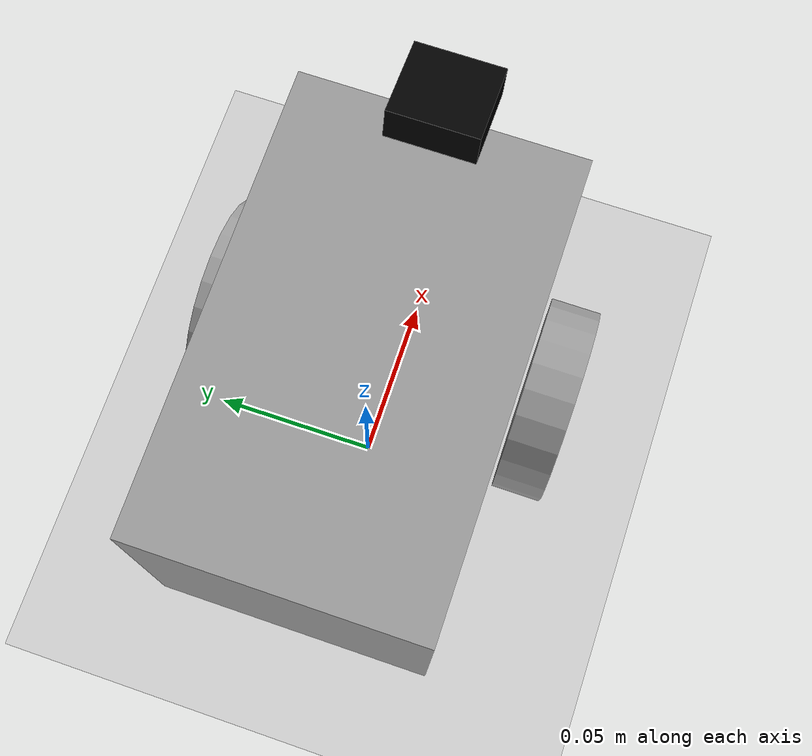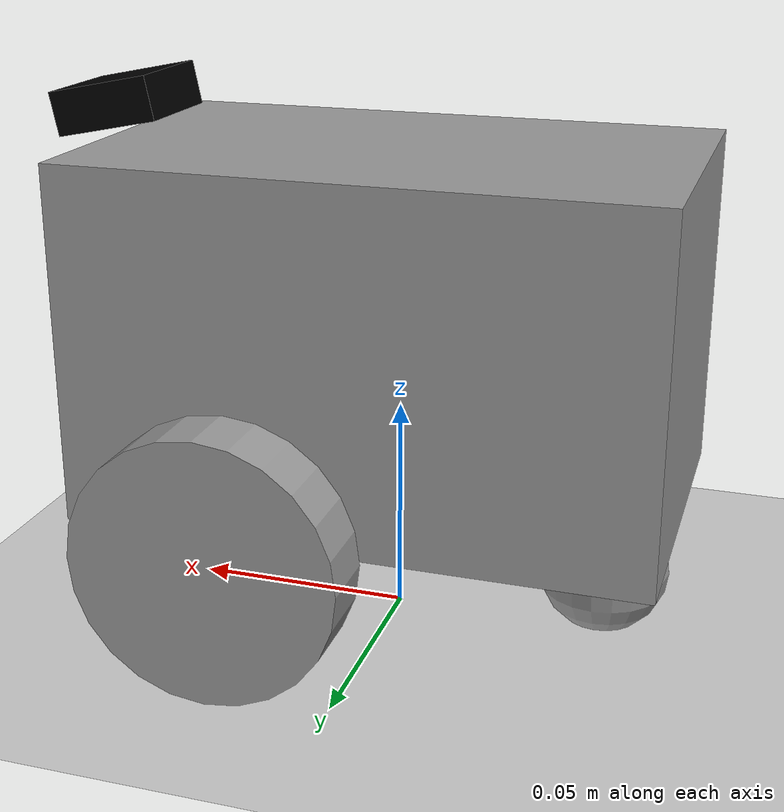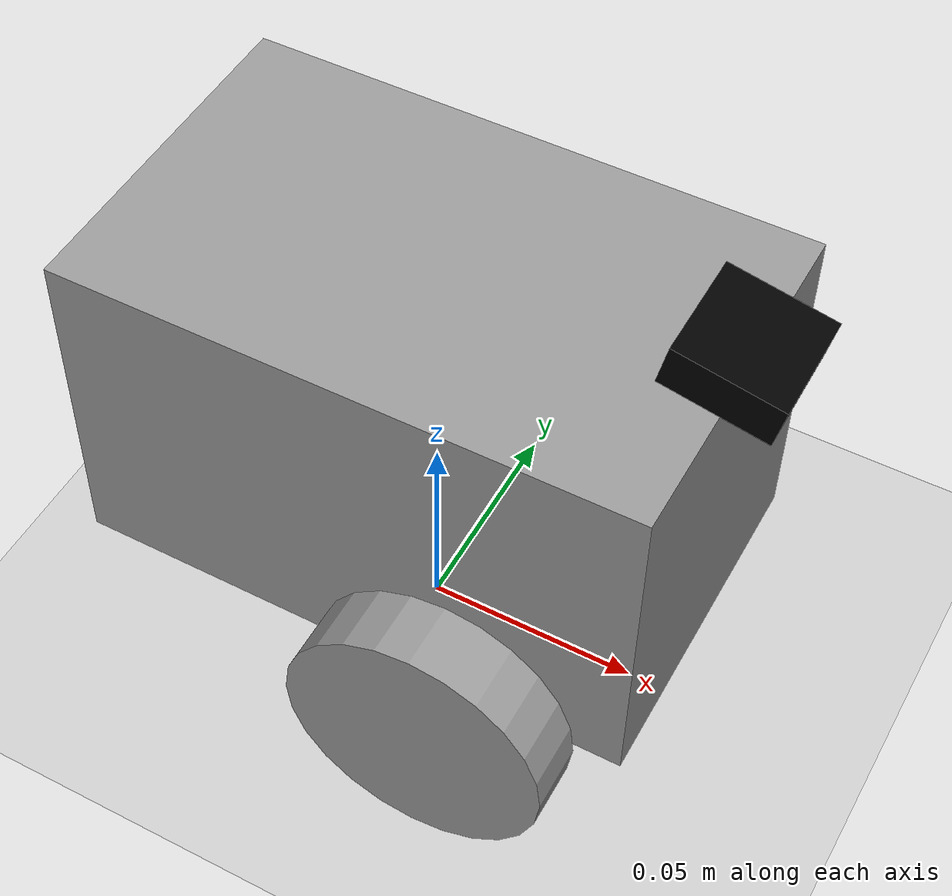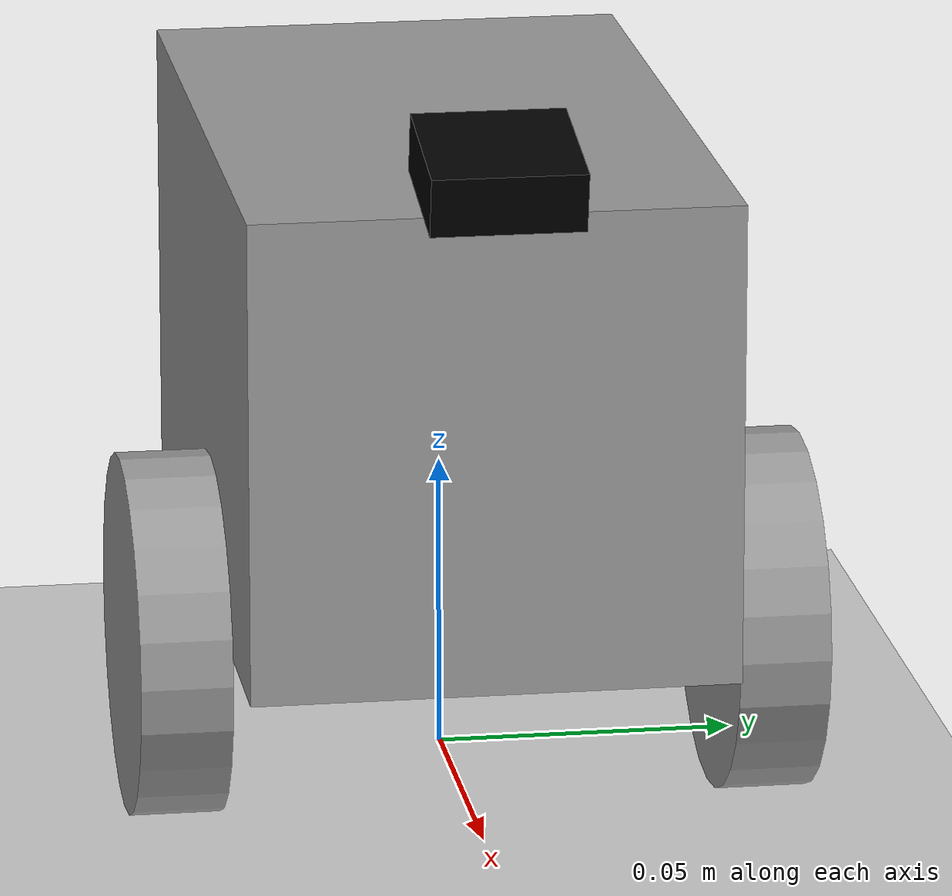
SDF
<?xml version="1.0" ?>
<sdf version="1.5">
  <world name="default">

   <!-- A global light source -->
    <include>
      <uri>model://sun</uri>
    </include>

   <!-- A ground plane -->
    <include>
      <uri>model://ground_plane</uri>
    </include>

    <model name="test">
    <!-- A testing model that includes the Velodyne sensor model -->
      <include>
        <uri>model://hummingbot</uri>
      </include>
    <!-- Attach the plugin to this model -->
      <plugin name="hummingbot_wheel" filename="libhummingbot_plugin.so"/>
   </model>
 </world>
</sdf>

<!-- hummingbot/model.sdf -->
<sdf version='1.6'>
  <model name='hummingbot'>
    <link name='main_box'>
      <pose>0.0 0.0 0.07 0 -0 0</pose>
      <inertial>
        <mass>2</mass>
        <inertia>
          <ixx>0.00213333</ixx>
          <ixy>0</ixy>
          <ixz>0</ixz>
          <iyy>0.00388333</iyy>
          <iyz>0</iyz>
          <izz>0.00388333</izz>
        </inertia>
        <pose>0 0 0 0 -0 0</pose>
      </inertial>
      <gravity>1</gravity>
      <self_collide>0</self_collide>
      <kinematic>0</kinematic>
      <enable_wind>0</enable_wind>
      <visual name='visual'>
        <pose frame=''>0 0 0 0 -0 0</pose>
        <geometry>
          <box>
            <size>0.13 0.08 0.08</size>
          </box>
        </geometry>
        <material>
          <lighting>1</lighting>
          <script>
            <uri>file://media/materials/scripts/gazebo.material</uri>
            <name>Gazebo/Grey</name>
          </script>
          <shader type='vertex'>
            <normal_map>__default__</normal_map>
          </shader>
          <ambient>0.3 0.3 0.3 1</ambient>
          <diffuse>0.7 0.7 0.7 1</diffuse>
          <specular>0.01 0.01 0.01 1</specular>
          <emissive>0 0 0 1</emissive>
        </material>
        <transparency>0</transparency>
        <cast_shadows>1</cast_shadows>
      </visual>
      <collision name='collision'>
        <laser_retro>0</laser_retro>
        <max_contacts>10</max_contacts>
        <pose frame=''>0 0 0 0 -0 0</pose>
        <geometry>
          <box>
            <size>>0.13 0.08 0.08</size>
          </box>
        </geometry>
        <surface>
          <friction>
            <ode>
              <mu>1</mu>
              <mu2>1</mu2>
              <fdir1>0 0 0</fdir1>
              <slip1>0</slip1>
              <slip2>0</slip2>
            </ode>
            <torsional>
              <coefficient>1</coefficient>
              <patch_radius>0</patch_radius>
              <surface_radius>0</surface_radius>
              <use_patch_radius>1</use_patch_radius>
              <ode>
                <slip>0</slip>
              </ode>
            </torsional>
          </friction>
          <bounce>
            <restitution_coefficient>0</restitution_coefficient>
            <threshold>1e+06</threshold>
          </bounce>
          <contact>
            <collide_without_contact>0</collide_without_contact>
            <collide_without_contact_bitmask>1</collide_without_contact_bitmask>
            <collide_bitmask>1</collide_bitmask>
            <ode>
              <soft_cfm>0</soft_cfm>
              <soft_erp>0.2</soft_erp>
              <kp>1e+13</kp>
              <kd>1</kd>
              <max_vel>0.01</max_vel>
              <min_depth>0</min_depth>
            </ode>
            <bullet>
              <split_impulse>1</split_impulse>
              <split_impulse_penetration_threshold>-0.01</split_impulse_penetration_threshold>
              <soft_cfm>0</soft_cfm>
              <soft_erp>0.2</soft_erp>
              <kp>1e+13</kp>
              <kd>1</kd>
            </bullet>
          </contact>
        </surface>

      </collision>
    </link>
    <link name='ball_wheel'>
      <pose frame=''>-0.048 -0.002958 0.015 0 -0 0</pose>
      <inertial>
        <mass>0.015</mass>
        <inertia>
          <ixx>0.0015</ixx>
          <ixy>0</ixy>
          <ixz>0</ixz>
          <iyy>0.0015</iyy>
          <iyz>0</iyz>
          <izz>0.0015</izz>
        </inertia>
        <pose frame=''>0 0 0 0 -0 0</pose>
      </inertial>
      <gravity>1</gravity>
      <self_collide>0</self_collide>
      <kinematic>0</kinematic>
      <enable_wind>0</enable_wind>
      <visual name='visual'>
        <pose frame=''>0 0 0 0 -0 0</pose>
        <geometry>
          <sphere>
            <radius>0.015</radius>
          </sphere>
        </geometry>
        <material>
          <lighting>1</lighting>
          <script>
            <uri>file://media/materials/scripts/gazebo.material</uri>
            <name>Gazebo/Grey</name>
          </script>
          <shader type='pixel'>
            <normal_map>__default__</normal_map>
          </shader>
          <ambient>0.3 0.3 0.3 1</ambient>
          <diffuse>0.7 0.7 0.7 1</diffuse>
          <specular>0.01 0.01 0.01 1</specular>
          <emissive>0 0 0 1</emissive>
        </material>
        <transparency>0</transparency>
        <cast_shadows>1</cast_shadows>
      </visual>
      <collision name='collision'>
        <laser_retro>0</laser_retro>
        <max_contacts>10</max_contacts>
        <pose frame=''>0 0 0 0 -0 0</pose>
        <geometry>
          <sphere>
            <radius>0.015</radius>
          </sphere>
        </geometry>
        <surface>
          <friction>
            <ode>
              <mu>1</mu>
              <mu2>1</mu2>
              <fdir1>0 0 0</fdir1>
              <slip1>0</slip1>
              <slip2>0</slip2>
            </ode>
            <torsional>
              <coefficient>1</coefficient>
              <patch_radius>0</patch_radius>
              <surface_radius>0</surface_radius>
              <use_patch_radius>1</use_patch_radius>
              <ode>
                <slip>0</slip>
              </ode>
            </torsional>
          </friction>
          <bounce>
            <restitution_coefficient>0</restitution_coefficient>
            <threshold>1e+06</threshold>
          </bounce>
          <contact>
            <collide_without_contact>0</collide_without_contact>
            <collide_without_contact_bitmask>1</collide_without_contact_bitmask>
            <collide_bitmask>1</collide_bitmask>
            <ode>
              <soft_cfm>0</soft_cfm>
              <soft_erp>0.2</soft_erp>
              <kp>1e+13</kp>
              <kd>1</kd>
              <max_vel>0.01</max_vel>
              <min_depth>0</min_depth>
            </ode>
            <bullet>
              <split_impulse>1</split_impulse>
              <split_impulse_penetration_threshold>-0.01</split_impulse_penetration_threshold>
              <soft_cfm>0</soft_cfm>
              <soft_erp>0.2</soft_erp>
              <kp>1e+13</kp>
              <kd>1</kd>
            </bullet>
          </contact>
        </surface>
      </collision>
    </link>
    <link name='camera_link'>
      <pose frame=''>0.065 0 0.117 0 0.2  0</pose>
      <inertial>
        <mass>0.0002</mass>
        <inertia>
          <ixx>0</ixx>
          <iyy>0</iyy>
          <izz>0</izz>
          <ixy>0</ixy>
          <ixz>0</ixz>
          <iyz>0</iyz>
        </inertia>
        <pose frame='main_box'>0 0 0 0 0 0</pose>
      </inertial>
      <sensor name='camera' type='camera'>
         <topic>hummingdrone_camera</topic>
        <camera name='__default__'>
          <horizontal_fov>2.79253</horizontal_fov>
          <image>
            <width>1280</width>
            <height>720</height>
          </image>
          <clip>
            <near>0.01</near>
            <far>1</far>
          </clip>
        </camera>
        <always_on>1</always_on>
        <update_rate>10</update_rate>
        <visualize>1</visualize>
        <plugin name="camera_publisher" filename="libcamera_sensor_plugin.so"/>
      </sensor>
      <self_collide>0</self_collide>
      <enable_wind>0</enable_wind>
      <kinematic>0</kinematic>
      <gravity>0</gravity>
      <visual name='visual'>
        <geometry>
          <box>
            <size>0.024 0.025 0.01</size>
          </box>
        </geometry>
        <material>
          <shader type='pixel'>
            <normal_map>__default__</normal_map>
          </shader>
          <script>
            <name>ModelPreview_7::camera_link::visual_MATERIAL_</name>
            <uri>__default__</uri>
          </script>
          <ambient>0 0 0 1</ambient>
          <diffuse>0 0 0 1</diffuse>
          <specular>0 0 0 1</specular>
          <emissive>0 0 0 1</emissive>
        </material>
        <pose frame=''>0 0 0 0 -0 0</pose>
        <transparency>0</transparency>
        <cast_shadows>1</cast_shadows>
      </visual>
      <collision name='collision'>
        <laser_retro>0</laser_retro>
        <max_contacts>10</max_contacts>
        <pose frame=''>0 0 0 0 -0 0</pose>
        <geometry>
          <box>
            <size>0.024 0.021 0.01</size>
          </box>
        </geometry>
      </collision>
    </link>
    <link name='left_wheel'>
      <pose frame=''>0.026 0.049 0.03 1.5707 -0 0</pose>
      <inertial>
        <mass>0.2</mass>
        <inertia>
          <ixx>0.02916667</ixx>
          <ixy>0</ixy>
          <ixz>0</ixz>
          <iyy>0.02916667</iyy>
          <iyz>0</iyz>
          <izz>0.025</izz>
        </inertia>
        <pose frame=''>0 0 0 0 -0 0</pose>
      </inertial>
      <gravity>1</gravity>
      <self_collide>0</self_collide>
      <kinematic>0</kinematic>
      <enable_wind>0</enable_wind>
      <visual name='visual'>
        <pose frame=''>0 0 0 0 -0 0</pose>
        <geometry>
          <cylinder>
            <radius>0.03</radius>
            <length>0.015</length>
          </cylinder>
        </geometry>
        <material>
          <lighting>1</lighting>
          <script>
            <uri>file://media/materials/scripts/gazebo.material</uri>
            <name>Gazebo/Grey</name>
          </script>
          <shader type='vertex'>
            <normal_map>__default__</normal_map>
          </shader>
          <ambient>0.3 0.3 0.3 1</ambient>
          <diffuse>0.7 0.7 0.7 1</diffuse>
          <specular>0.01 0.01 0.01 1</specular>
          <emissive>0 0 0 1</emissive>
        </material>
        <transparency>0</transparency>
        <cast_shadows>1</cast_shadows>
      </visual>
      <collision name='collision'>
        <laser_retro>0</laser_retro>
        <max_contacts>10</max_contacts>
        <pose frame=''>0 0 0 0 -0 0</pose>
        <geometry>
          <cylinder>
            <radius>0.03</radius>
            <length>0.015</length>
          </cylinder>
        </geometry>
        <surface>
          <friction>
            <ode>
              <mu>1</mu>
              <mu2>1</mu2>
              <fdir1>0 0 0</fdir1>
              <slip1>0</slip1>
              <slip2>0</slip2>
            </ode>
            <torsional>
              <coefficient>1</coefficient>
              <patch_radius>0</patch_radius>
              <surface_radius>0</surface_radius>
              <use_patch_radius>1</use_patch_radius>
              <ode>
                <slip>0</slip>
              </ode>
            </torsional>
          </friction>
          <bounce>
            <restitution_coefficient>0</restitution_coefficient>
            <threshold>1e+06</threshold>
          </bounce>
          <contact>
            <collide_without_contact>0</collide_without_contact>
            <collide_without_contact_bitmask>1</collide_without_contact_bitmask>
            <collide_bitmask>1</collide_bitmask>
            <ode>
              <soft_cfm>0</soft_cfm>
              <soft_erp>0.2</soft_erp>
              <kp>1e+13</kp>
              <kd>1</kd>
              <max_vel>0.01</max_vel>
              <min_depth>0</min_depth>
            </ode>
            <bullet>
              <split_impulse>1</split_impulse>
              <split_impulse_penetration_threshold>-0.01</split_impulse_penetration_threshold>
              <soft_cfm>0</soft_cfm>
              <soft_erp>0.2</soft_erp>
              <kp>1e+13</kp>
              <kd>1</kd>
            </bullet>
          </contact>
        </surface>

       </collision>
    </link>
    <link name='right_wheel'>
      <pose frame=''>0.025 -0.049 0.03 1.5707 -0 0</pose>
      <inertial>
        <mass>0.2</mass>
        <inertia>
          <ixx>0.02916670</ixx>
          <ixy>0</ixy>
          <ixz>0</ixz>
          <iyy>0.02916670</iyy>
          <iyz>0</iyz>
          <izz>0.025</izz>
        </inertia>
        <pose frame=''>0 0 0 0 -0 0</pose>
      </inertial>
      <gravity>1</gravity>
      <self_collide>0</self_collide>
      <kinematic>0</kinematic>
      <enable_wind>0</enable_wind>
      <visual name='visual'>
        <pose frame=''>0 0 0 0 -0 0</pose>
        <geometry>
          <cylinder>
            <radius>0.03</radius>
            <length>0.015</length>
          </cylinder>
        </geometry>
        <material>
          <lighting>1</lighting>
          <script>
            <uri>file://media/materials/scripts/gazebo.material</uri>
            <name>Gazebo/Grey</name>
          </script>
          <shader type='vertex'>
            <normal_map>__default__</normal_map>
          </shader>
          <ambient>0.3 0.3 0.3 1</ambient>
          <diffuse>0.7 0.7 0.7 1</diffuse>
          <specular>0.01 0.01 0.01 1</specular>
          <emissive>0 0 0 1</emissive>
        </material>
        <transparency>0</transparency>
        <cast_shadows>1</cast_shadows>
      </visual>
      <collision name='collision'>
        <laser_retro>0</laser_retro>
        <max_contacts>10</max_contacts>
        <pose frame=''>0 0 0 0 -0 0</pose>
        <geometry>
          <cylinder>
            <radius>0.03</radius>
            <length>0.015</length>
          </cylinder>
        </geometry>
        <surface>
          <friction>
            <ode>
              <mu>1</mu>
              <mu2>1</mu2>
              <fdir1>0 0 0</fdir1>
              <slip1>0</slip1>
              <slip2>0</slip2>
            </ode>
            <torsional>
              <coefficient>1</coefficient>
              <patch_radius>0</patch_radius>
              <surface_radius>0</surface_radius>
              <use_patch_radius>1</use_patch_radius>
              <ode>
                <slip>0</slip>
              </ode>
            </torsional>
          </friction>
          <bounce>
            <restitution_coefficient>0</restitution_coefficient>
            <threshold>1e+06</threshold>
          </bounce>
          <contact>
            <collide_without_contact>0</collide_without_contact>
            <collide_without_contact_bitmask>1</collide_without_contact_bitmask>
            <collide_bitmask>1</collide_bitmask>
            <ode>
              <soft_cfm>0</soft_cfm>
              <soft_erp>0.2</soft_erp>
              <kp>1e+13</kp>
              <kd>1</kd>
              <max_vel>0.01</max_vel>
              <min_depth>0</min_depth>
            </ode>
            <bullet>
              <split_impulse>1</split_impulse>
              <split_impulse_penetration_threshold>-0.01</split_impulse_penetration_threshold>
              <soft_cfm>0</soft_cfm>
              <soft_erp>0.2</soft_erp>
              <kp>1e+13</kp>
              <kd>1</kd>
            </bullet>
          </contact>
        </surface>
     </collision>
    </link>
    <joint name='ball_link' type='ball'>
      <parent>main_box</parent>
      <child>ball_wheel</child>
      <pose frame=''>0 0 0 0 -0 0</pose>
      <physics>
        <ode>
          <limit>
            <cfm>0</cfm>
            <erp>0.2</erp>
          </limit>
          <suspension>
            <cfm>0</cfm>
            <erp>0.2</erp>
          </suspension>
        </ode>
      </physics>
    </joint>
    <joint name='camera_joint' type='fixed'>
      <parent>main_box</parent>
      <child>camera_link</child>
      <pose frame=''>0 0 0 0 -0 0</pose>
      <physics>
        <ode>
          <limit>
            <cfm>0</cfm>
            <erp>0.2</erp>
          </limit>
          <suspension>
            <cfm>0</cfm>
            <erp>0.2</erp>
          </suspension>
        </ode>
      </physics>
    </joint>
    <joint name='left_wheel_hinge' type='revolute'>
      <parent>main_box</parent>
      <child>left_wheel</child>
      <pose frame=''>0 0 0 0 -0 0</pose>
      <axis>
        <xyz>0 0 1</xyz>
        <use_parent_model_frame>0</use_parent_model_frame>
        <limit>
          <lower>-1.79769e+308</lower>
          <upper>1.79769e+308</upper>
          <effort>-1</effort>
          <velocity>-1</velocity>
        </limit>
        <dynamics>
          <spring_reference>0</spring_reference>
          <spring_stiffness>0</spring_stiffness>
          <damping>0</damping>
          <friction>0</friction>
        </dynamics>
      </axis>
      <physics>
        <ode>
          <limit>
            <cfm>0</cfm>
            <erp>0.2</erp>
          </limit>
          <suspension>
            <cfm>0</cfm>
            <erp>0.2</erp>
          </suspension>
        </ode>
      </physics>
    </joint>
    <joint name='right_wheel_hinge' type='revolute'>
      <parent>main_box</parent>
      <child>right_wheel</child>
      <pose frame=''>0 0 0 0 -0 0</pose>
      <axis>
        <xyz>0 0 1</xyz>
        <use_parent_model_frame>0</use_parent_model_frame>
        <limit>
          <lower>-1.79769e+308</lower>
          <upper>1.79769e+308</upper>
          <effort>-1</effort>
          <velocity>-1</velocity>
        </limit>
        <dynamics>
          <spring_reference>0</spring_reference>
          <spring_stiffness>0</spring_stiffness>
          <damping>0</damping>
          <friction>0</friction>
        </dynamics>
      </axis>
      <physics>
        <ode>
          <limit>
            <cfm>0</cfm>
            <erp>0.2</erp>
          </limit>
          <suspension>
            <cfm>0</cfm>
            <erp>0.2</erp>
          </suspension>
        </ode>
      </physics>
    </joint>
    <static>0</static>
    <allow_auto_disable>1</allow_auto_disable>
   </model>
 </sdf>
